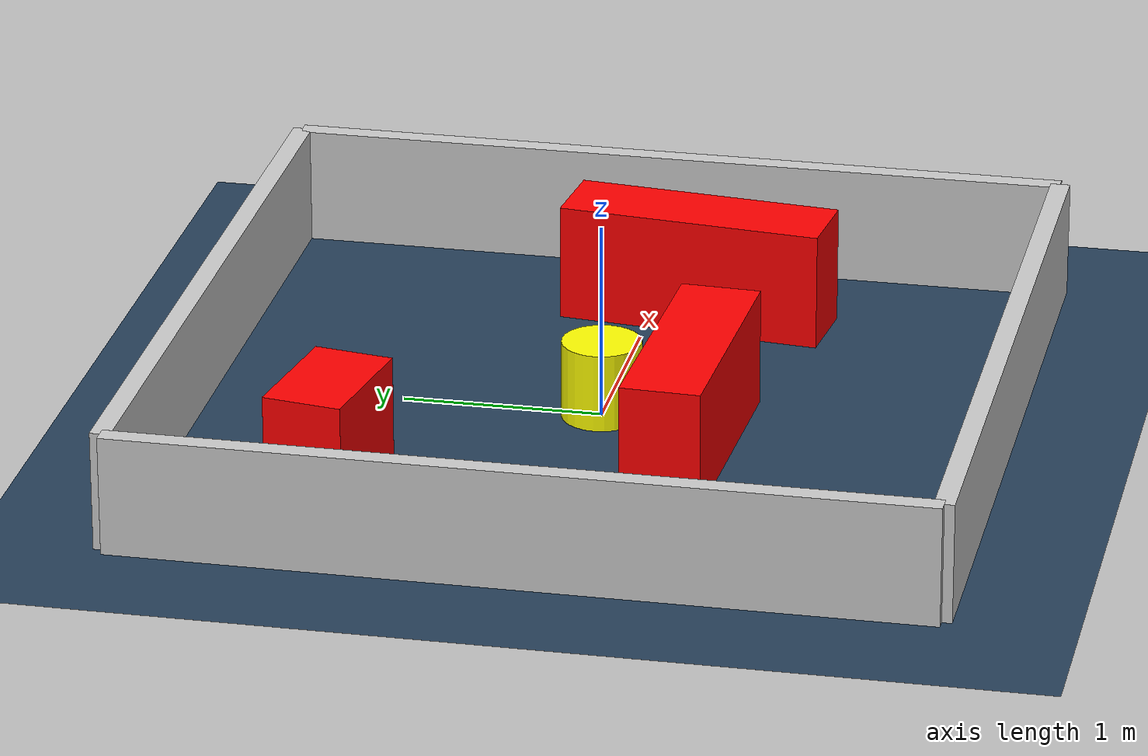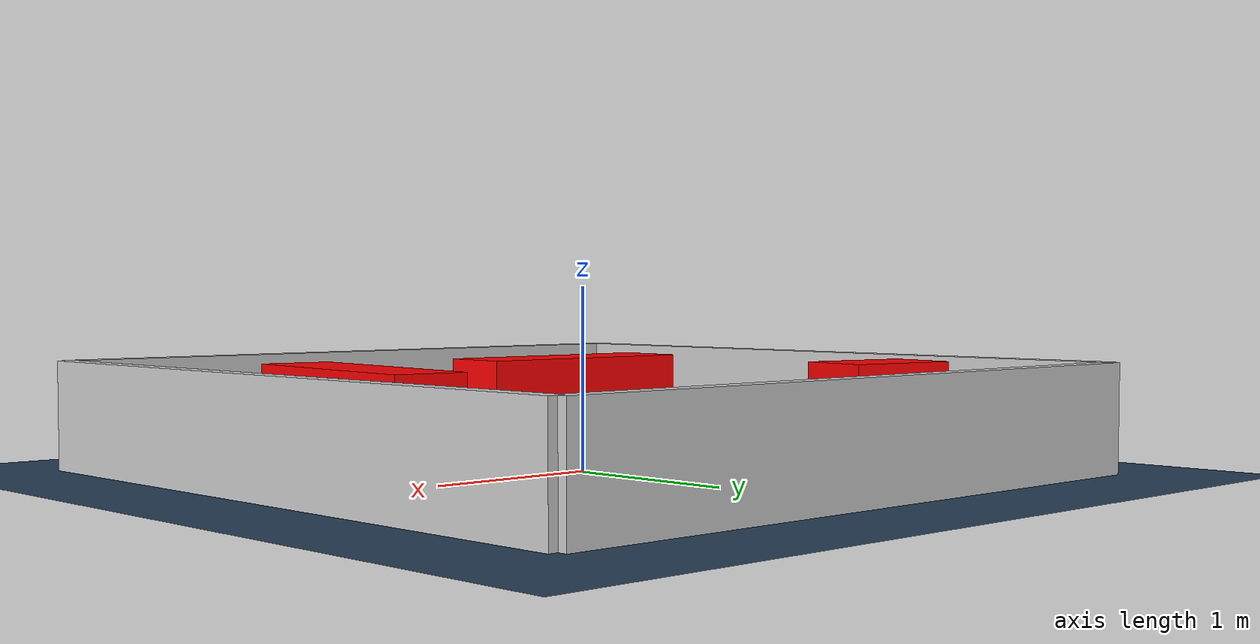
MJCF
<?xml version="1.0" ?>
<mujoco model="generated_environment">
  <option timestep="0.01" integrator="RK4" cone="elliptic"/>
  <default>
    <geom density="1"/>
  </default>
  <asset>
    <texture builtin="gradient" height="3072" rgb1="0.3 0.5 0.7" rgb2="0 0 0" type="skybox" width="512"/>
    <texture builtin="checker" height="300" mark="edge" markrgb="0.8 0.8 0.8" name="groundplane" rgb1="0.2 0.3 0.4" rgb2="0.1 0.2 0.3" type="2d" width="300"/>
    <material name="groundplane" reflectance="0.2" texrepeat="5 5" texture="groundplane" texuniform="true"/>
    <material name="robot" rgba="0.0 1.0 0.0 1"/>
  </asset>
  <worldbody>
    <light dir="0 0 -1" directional="true" pos="0 0 1.5"/>
    <geom condim="4" friction="1.0 0.005 0.001" material="groundplane" name="floor" size="0 0 0.05" type="plane"/>
    <body name="walls">
      <geom name="wall_1" condim="4" pos="-2.0 0.0 0.3" rgba="0.800000011920929 0.800000011920929 0.800000011920929 1.0" size="0.05 2.0 0.3" type="box"/>
      <geom name="wall_2" condim="4" pos="2.0 0.0 0.3" rgba="0.800000011920929 0.800000011920929 0.800000011920929 1.0" size="0.05 2.0 0.3" type="box"/>
      <geom name="wall_3" condim="4" pos="0.0 -2.0 0.3" rgba="0.800000011920929 0.800000011920929 0.800000011920929 1.0" size="2.0 0.05 0.3" type="box"/>
      <geom name="wall_4" condim="4" pos="0.0 2.0 0.3" rgba="0.800000011920929 0.800000011920929 0.800000011920929 1.0" size="2.0 0.05 0.3" type="box"/>
    </body>
    <body name="robot">
      <joint name="joint_x" type="slide" pos="0 0 0" axis="1 0 0"/>
      <joint name="joint_y" type="slide" pos="0 0 0" axis="0 1 0"/>
      <geom name="robot" type="sphere" pos="0.3 0.0 0.2" size="0.05" mass="5." friction="1.0 0.005 0.0001" condim="4" rgba="0.5 0.5 0.5 1.0"/>
      <site name="sensor_ball"/>
    </body>
    <body name="obstacle_movable_1">
      <geom name="obstacle_movable_1" condim="4" pos="0.0 0.0 0.2" euler="0 0 0.0" friction="1.0 0.005 0.001" rgba="1.0 1.0 0.0 1.0" size="0.2 0.2 0.0" type="cylinder" mass="0.1"/>
      <joint type="free"/>
    </body>
    <body name="obstacle_2_static">
      <geom name="obstacle_2_static" condim="4" pos="-1.1473443582182408 1.1058810659764153 0.3" euler="0 0 170.54097348690559" friction="1.0 0.005 0.001" rgba="1 0 0 1" size="0.3263686619577063 0.2 0.3" type="box"/>
    </body>
    <body name="obstacle_3_static">
      <geom name="obstacle_3_static" condim="4" pos="1.3048111392433763 -0.2441129738139589 0.3" euler="0 0 83.89631018790654" friction="1.0 0.005 0.001" rgba="1 0 0 1" size="0.6789806145396377 0.2 0.3" type="box"/>
    </body>
    <body name="obstacle_4_static">
      <geom name="obstacle_4_static" condim="4" pos="-0.34219700745344084 -0.5098342205145918 0.3" euler="0 0 357.5204272354483" friction="1.0 0.005 0.001" rgba="1 0 0 1" size="0.659673114388893 0.2 0.3" type="box"/>
    </body>
  </worldbody>
  <actuator>
    <motor name="actuator_x" joint="joint_x" gear="1" ctrlrange="-1 1"/>
    <motor name="actuator_y" joint="joint_y" gear="1" ctrlrange="-1 1"/>
  </actuator>
</mujoco>
